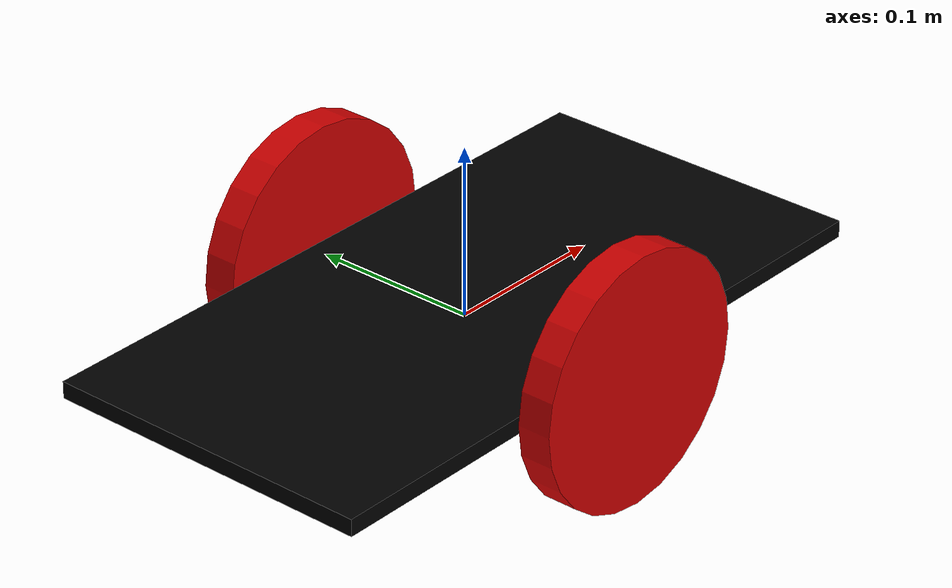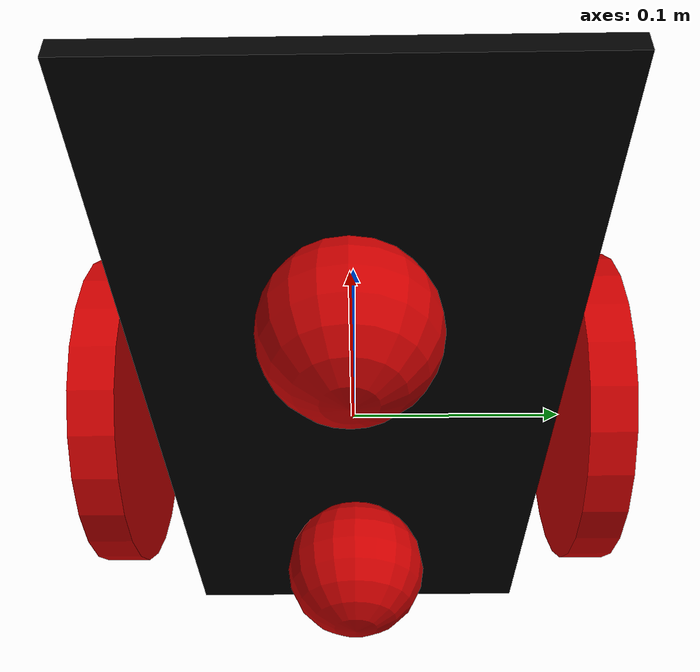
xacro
<?xml version="1.0"?>

<robot xmlns:xacro="http://www.ros.org/wiki/xacro" name="diff_drive2">

  <xacro:property name="base_lenght" value="0.4"/>
  <xacro:property name="base_width" value="0.2"/>
  <xacro:property name="base_height" value="0.01"/>
  <xacro:property name="base_mass" value="5.0"/>

  <xacro:property name="wheel_radius" value="0.074"/>
  <xacro:property name="wheel_thickness" value="0.02"/>
  <xacro:property name="wheel_mass" value="3"/>

  <xacro:property name="caster_radius" value="0.0375"/>
  <xacro:property name="caster_mass" value="0.05"/>
  <xacro:property name="caster_offset" value="0.1"/>

  <xacro:include filename="$(find diff_drive_description)/urdf/diff_drive_inertial.urdf.xacro" /> <!--Interial macros-->
  <xacro:include filename="$(find diff_drive_description)/urdf/diff_drive_materials.urdf.xacro" /> <!--Colors (materials)-->
  <xacro:include filename="$(find diff_drive_description)/urdf/diff_drive_gazebo.urdf.xacro" /> <!-- Gazebo plugins -->

  <!-- Creating base -->
  <link name="base_footprint">
    <visual>
      <origin xyz="0 0 0" rpy="0 0 0" />
      <geometry>
        <box size="0.001 0.001 0.001" />
      </geometry>
    </visual>
  </link>

  <link name="base_link">
    <visual>
      <geometry>
        <box size="${base_lenght} ${base_width} ${base_height}"/>
      </geometry>
      <origin rpy="0 0 0" xyz="0 0 0"/>
      <material name="black"/>
    </visual>
    <colision>
      <geometry>
        <box size="${base_lenght} ${base_width} ${base_height}"/>
      </geometry>
      <origin rpy="0 0 0" xyz="0 0 0"/>
      <material name="black"/>
    </colision>
    <xacro:box_inertia m="5" w="${base_lenght}" h="${base_width}" d="0.01"/>
  </link>

  <joint name="base_footprint_joint" type="fixed">
    <origin xyz="0 0 ${base_height/2}" rpy="0 0 0"/>
    <parent link="base_footprint"/>
    <child link="base_link"/>
  </joint>

  <!-- Main wheels -->
  <xacro:macro name="wheel" params="prefix reflect">
    <link name="${prefix}_wheel">
      <visual>
        <origin xyz="0 0 0" rpy="${pi/2} 0 0"/>
        <geometry>
          <cylinder radius="${wheel_radius}" length="${wheel_thickness}"/>
        </geometry>
        <material name="red"/>
      </visual>
      <collision>
        <origin xyz="0 0 0" rpy="${pi/2} 0 0"/>
        <geometry>
          <cylinder radius="${wheel_radius}" length="0.005"/>
        </geometry>
      </collision>
      <xacro:cylinder_inertia m="1" r="${wheel_radius}" h="${wheel_thickness}"/>
    </link>
    <gazebo reference="${prefix}_wheel">
       <mu1 value="1.0"/>
       <mu2 value="1.0"/>
       <kp value="10000000.0"/>
       <kd value="1.0"/>
       <fdir1 value="1 0 0"/>
     </gazebo>
     <joint name="${prefix}_wheel_joint" type="continuous">
       <parent link="base_link"/>
       <child link="${prefix}_wheel"/>
       <axis xyz="0 1 0" rpy="0 0 0" />
       <origin xyz="0 ${(base_width/2+wheel_thickness/2)*reflect} 0" rpy="0 0 0"/>
       <limit effort="1000" velocity="100" />
       <dynamics damping="0.0" friction="0.0"/>
     </joint>
  </xacro:macro>

  <xacro:wheel prefix="left" reflect="1"/>
  <xacro:wheel prefix="right" reflect="-1"/>

  <!-- Caster wheels -->
  <xacro:macro name="caster" params="prefix reflect" >
    <link name="${prefix}_caster_link">
    	<visual>
    		<geometry>
    			<sphere radius="${caster_radius}"/>
    		</geometry>
    		<origin rpy="0 0 0" xyz="0 0 0"/> <!--preco sa pri guly nastavuje rpy-->
    		<material name="red"/>
    	</visual>
    	<collision>
    		<geometry>
    			<sphere radius="${caster_radius}"/>
    		</geometry>
    		<origin rpy="0 0 0" xyz="0 0 0"/>
    	</collision>
      <xacro:sphere_inertia m="${caster_mass}" r="${caster_radius}"/>
    </link>
    <joint name="${prefix}_caster_joint" type="fixed">
    	<parent link="base_link"/>
    	<child link="${prefix}_caster_link"/>
    	<origin rpy="0 0 0" xyz="${caster_offset*reflect} 0 ${-caster_radius}"  />   <!-- preco je v knihe rpy= -1.57 0 0 ?-->
    </joint>
  </xacro:macro>

  <xacro:caster prefix="front" reflect="1"/>
  <xacro:caster prefix="back" reflect="-1"/>

</robot>

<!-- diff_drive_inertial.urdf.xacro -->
<robot xmlns:xacro="http://ros.org/wiki/xacro" name="diff_robot_inertial">

  <xacro:macro name="cylinder_inertia" params="m r h">
    <inertial>
      <mass value="${m}"/>
      <inertia ixx="${m*(3*r*r+h*h)/12}" ixy = "0" ixz = "0" iyy="${m*(3*r*r+h*h)/12}" iyz = "0" izz="${m*r*r/2}"/>
    </inertial>
  </xacro:macro>

  <xacro:macro name="box_inertia" params="m w h d">
    <inertial>
      <mass value="${m}"/>
      <inertia ixx="${m / 12.0 * (d*d + h*h)}" ixy="0.0" ixz="0.0" iyy="${m / 12.0 * (w*w + h*h)}" iyz="0.0" izz="${m / 12.0 * (w*w + d*d)}"/>
    </inertial>
  </xacro:macro>

  <xacro:macro name="sphere_inertia" params="m r">
    <inertial>
      <mass value="${m}"/>
      <inertia ixx="${2.0*m*(r*r)/5.0}" ixy="0.0" ixz="0.0" iyy="${2.0*m*(r*r)/5.0}" iyz="0.0" izz="${2.0*m*(r*r)/5.0}"/>
    </inertial>
  </xacro:macro>

</robot>

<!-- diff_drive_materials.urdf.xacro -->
<robot xmlns:xacro="http://ros.org/wiki/xacro" name="diff_drive_colors">

  <!--Color Properties-->
  <material name="blue">
    <color rgba="0 0 0.8 1"/>
  </material>
  <material name="black">
    <color rgba="0 0 0 1"/>
  </material>
  <material name="white">
    <color rgba="1 1 1 1"/>
  </material>
  <material name="red">
    <color rgba="0.8 0.0 0.0 1.0"/>
  </material>

  <gazebo reference="base_link">
    <material>Gazebo/Black</material>
  </gazebo>

  <gazebo reference="right_wheel">
    <material>Gazebo/Red</material>
  </gazebo>

  <gazebo reference="left_wheel">
    <material>Gazebo/Red</material>
  </gazebo>

  <gazebo reference="front_caster_wheel">
    <material>Gazebo/Red</material>
  </gazebo>

  <gazebo reference="back_caster_wheel">
    <material>Gazebo/Red</material>
  </gazebo>
</robot>
